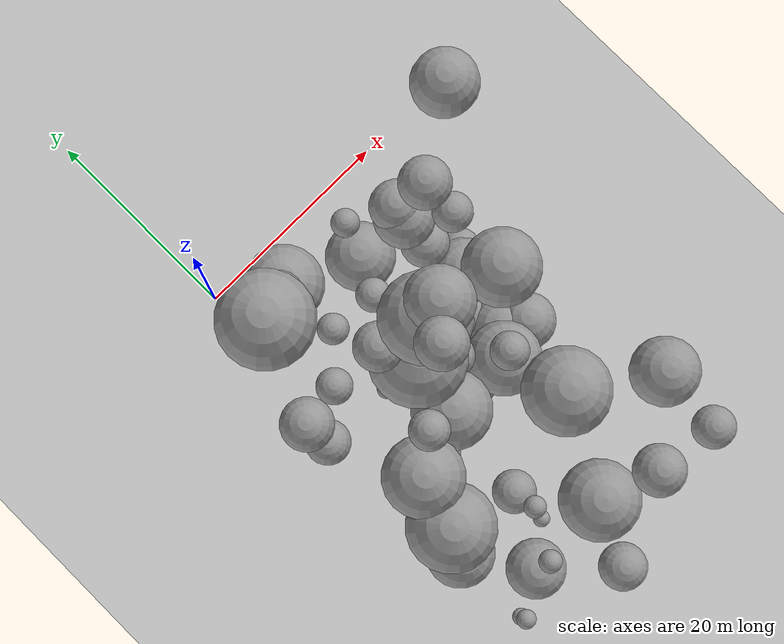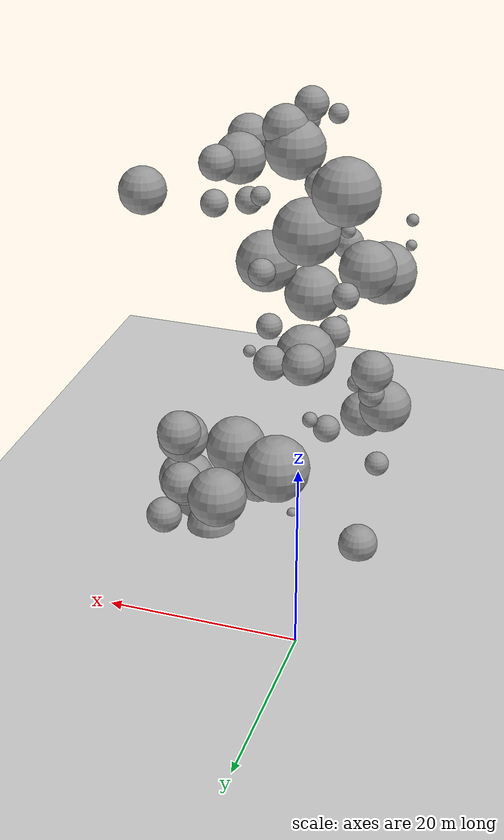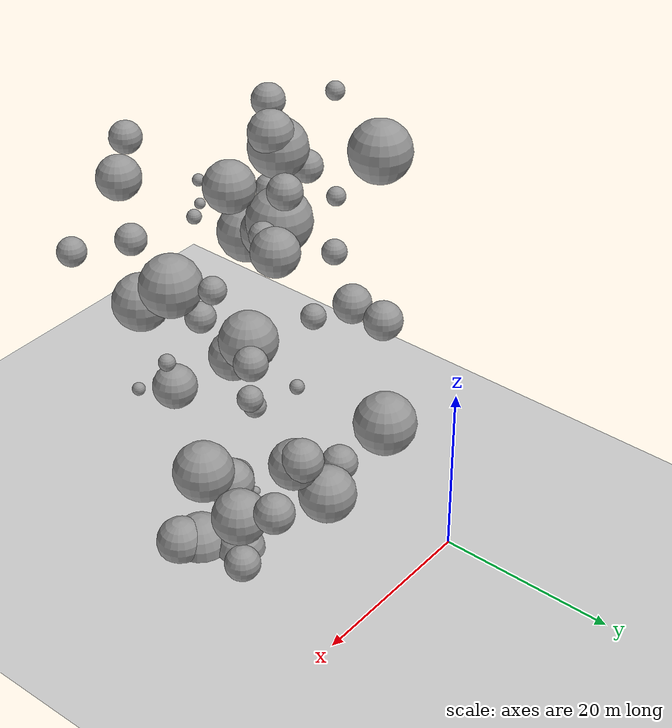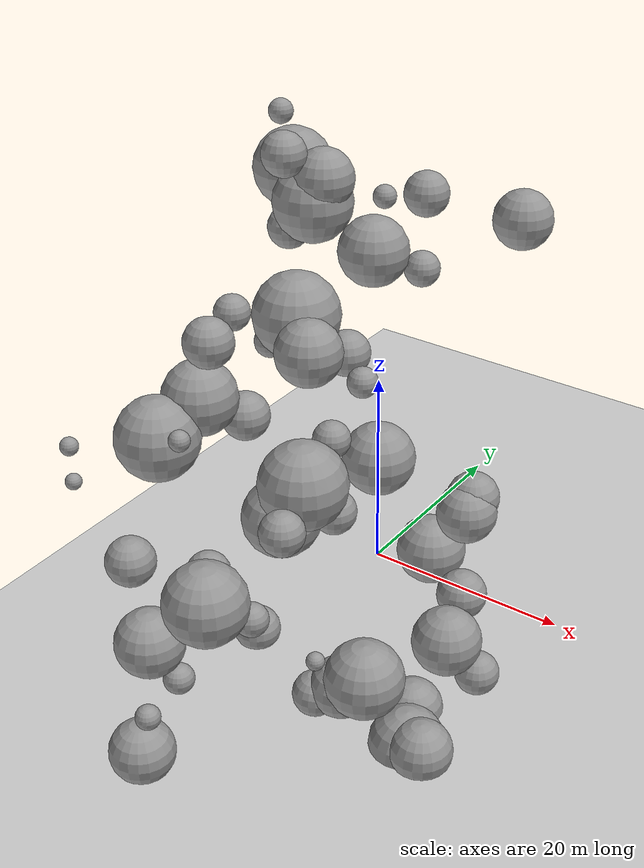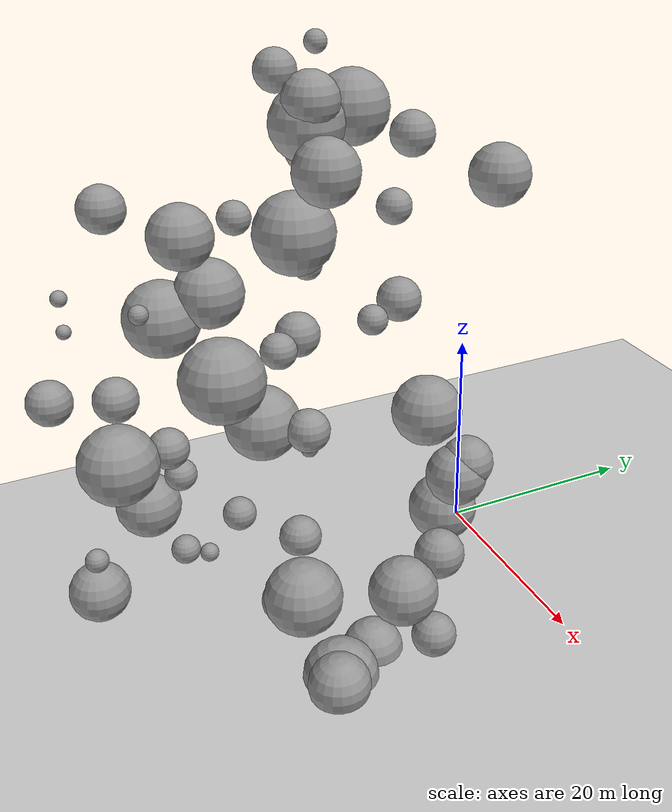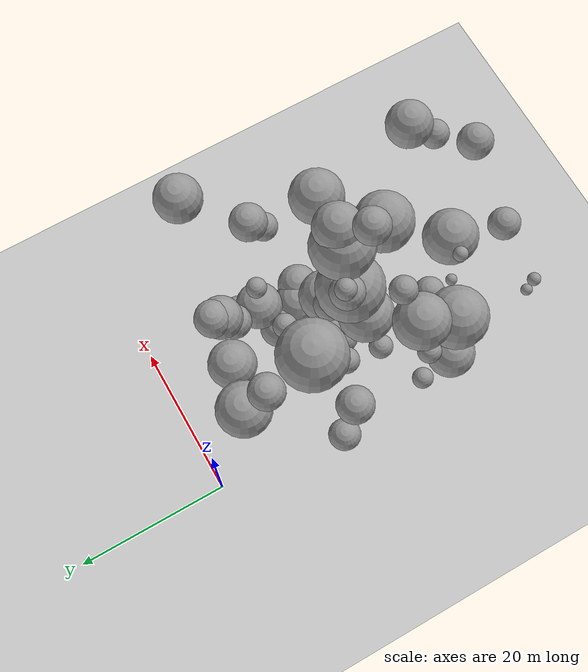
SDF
<sdf version="1.7">
 <world name="default">
  <model name="ground_plane">
   <static>1</static>
   <link name="link">
    <collision name="collision">
     <geometry><plane><normal>0 0 1</normal><size>100 100</size></plane></geometry>
     <surface>
      <contact><collide_bitmask>65535</collide_bitmask></contact>
      <friction><ode><mu>100</mu><mu2>50</mu2></ode></friction>
     </surface>
    </collision>
    <visual name="visual">
     <cast_shadows>0</cast_shadows>
     <geometry><plane><normal>0 0 1</normal><size>100 100</size></plane></geometry>
     <material>
      <script><uri>file://media/materials/scripts/gazebo.material</uri><name>Gazebo/Grey</name></script>
     </material>
    </visual>
   </link>
  </model>
  <model name="sphere_8">
   <static>1</static>
   <pose>-1 -32 10 0 0 0</pose>
   <link name="link">
    <inertial>
     <mass>11092.84915670774</mass>
     <inertia>
      <ixx>39422.070545254806</ixx>
      <iyy>39422.070545254806</iyy>
      <izz>39422.070545254806</izz>
      <ixy>0</ixy>
      <ixz>0</ixz>
      <iyz>0</iyz>
     </inertia>
    </inertial>
    <collision name="collision">
     <geometry><sphere><radius>2.9806993030238513</radius></sphere></geometry>
    </collision>
    <visual name="visual">
     <geometry><sphere><radius>2.9806993030238513</radius></sphere></geometry>
     <material>
      <script><uri>file://media/materials/scripts/gazebo.material</uri><name>Gazebo/Grey</name></script>
     </material>
    </visual>
   </link>
  </model>
  <model name="sphere_13">
   <static>1</static>
   <pose>18 -8 43 0 0 0</pose>
   <link name="link">
    <inertial>
     <mass>5152.770641691379</mass>
     <inertia>
      <ixx>10983.369762803279</ixx>
      <iyy>10983.369762803279</iyy>
      <izz>10983.369762803279</izz>
      <ixy>0</ixy>
      <ixz>0</ixz>
      <iyz>0</iyz>
     </inertia>
    </inertial>
    <collision name="collision">
     <geometry><sphere><radius>2.3084336735061317</radius></sphere></geometry>
    </collision>
    <visual name="visual">
     <geometry><sphere><radius>2.3084336735061317</radius></sphere></geometry>
     <material>
      <script><uri>file://media/materials/scripts/gazebo.material</uri><name>Gazebo/Grey</name></script>
     </material>
    </visual>
   </link>
  </model>
  <model name="sphere_14">
   <static>1</static>
   <pose>0 -16 31 0 0 0</pose>
   <link name="link">
    <inertial>
     <mass>1051.1044841971827</mass>
     <inertia>
      <ixx>776.3854716185958</ixx>
      <iyy>776.3854716185958</iyy>
      <izz>776.3854716185958</izz>
      <ixy>0</ixy>
      <ixz>0</ixz>
      <iyz>0</iyz>
     </inertia>
    </inertial>
    <collision name="collision">
     <geometry><sphere><radius>1.3588945593796224</radius></sphere></geometry>
    </collision>
    <visual name="visual">
     <geometry><sphere><radius>1.3588945593796224</radius></sphere></geometry>
     <material>
      <script><uri>file://media/materials/scripts/gazebo.material</uri><name>Gazebo/Grey</name></script>
     </material>
    </visual>
   </link>
  </model>
  <model name="sphere_15">
   <static>1</static>
   <pose>7 -22 0 0 0 0</pose>
   <link name="link">
    <inertial>
     <mass>87.60431492458373</mass>
     <inertia>
      <ixx>12.34648731932379</ixx>
      <iyy>12.34648731932379</iyy>
      <izz>12.34648731932379</izz>
      <ixy>0</ixy>
      <ixz>0</ixz>
      <iyz>0</iyz>
     </inertia>
    </inertial>
    <collision name="collision">
     <geometry><sphere><radius>0.5935795945507261</radius></sphere></geometry>
    </collision>
    <visual name="visual">
     <geometry><sphere><radius>0.5935795945507261</radius></sphere></geometry>
     <material>
      <script><uri>file://media/materials/scripts/gazebo.material</uri><name>Gazebo/Grey</name></script>
     </material>
    </visual>
   </link>
  </model>
  <model name="sphere_19">
   <static>1</static>
   <pose>6 -23 20 0 0 0</pose>
   <link name="link">
    <inertial>
     <mass>14718.632631495893</mass>
     <inertia>
      <ixx>63160.66510189505</ixx>
      <iyy>63160.66510189505</iyy>
      <izz>63160.66510189505</izz>
      <ixy>0</ixy>
      <ixz>0</ixz>
      <iyz>0</iyz>
     </inertia>
    </inertial>
    <collision name="collision">
     <geometry><sphere><radius>3.2753643580509237</radius></sphere></geometry>
    </collision>
    <visual name="visual">
     <geometry><sphere><radius>3.2753643580509237</radius></sphere></geometry>
     <material>
      <script><uri>file://media/materials/scripts/gazebo.material</uri><name>Gazebo/Grey</name></script>
     </material>
    </visual>
   </link>
  </model>
  <model name="sphere_24">
   <static>1</static>
   <pose>4 -38 9 0 0 0</pose>
   <link name="link">
    <inertial>
     <mass>461.1085611241519</mass>
     <inertia>
      <ixx>196.64046585716275</ixx>
      <iyy>196.64046585716275</iyy>
      <izz>196.64046585716275</izz>
      <ixy>0</ixy>
      <ixz>0</ixz>
      <iyz>0</iyz>
     </inertia>
    </inertial>
    <collision name="collision">
     <geometry><sphere><radius>1.0325351826695544</radius></sphere></geometry>
    </collision>
    <visual name="visual">
     <geometry><sphere><radius>1.0325351826695544</radius></sphere></geometry>
     <material>
      <script><uri>file://media/materials/scripts/gazebo.material</uri><name>Gazebo/Grey</name></script>
     </material>
    </visual>
   </link>
  </model>
  <model name="sphere_30">
   <static>1</static>
   <pose>11 -22 4 0 0 0</pose>
   <link name="link">
    <inertial>
     <mass>8712.248352823823</mass>
     <inertia>
      <ixx>26356.313424238208</ixx>
      <iyy>26356.313424238208</iyy>
      <izz>26356.313424238208</izz>
      <ixy>0</ixy>
      <ixz>0</ixz>
      <iyz>0</iyz>
     </inertia>
    </inertial>
    <collision name="collision">
     <geometry><sphere><radius>2.7500919357448264</radius></sphere></geometry>
    </collision>
    <visual name="visual">
     <geometry><sphere><radius>2.7500919357448264</radius></sphere></geometry>
     <material>
      <script><uri>file://media/materials/scripts/gazebo.material</uri><name>Gazebo/Grey</name></script>
     </material>
    </visual>
   </link>
  </model>
  <model name="sphere_37">
   <static>1</static>
   <pose>15 -31 41 0 0 0</pose>
   <link name="link">
    <inertial>
     <mass>5170.2749976728355</mass>
     <inertia>
      <ixx>11045.62573122916</ixx>
      <iyy>11045.62573122916</iyy>
      <izz>11045.62573122916</izz>
      <ixy>0</ixy>
      <ixz>0</ixz>
      <iyz>0</iyz>
     </inertia>
    </inertial>
    <collision name="collision">
     <geometry><sphere><radius>2.311044694371895</radius></sphere></geometry>
    </collision>
    <visual name="visual">
     <geometry><sphere><radius>2.311044694371895</radius></sphere></geometry>
     <material>
      <script><uri>file://media/materials/scripts/gazebo.material</uri><name>Gazebo/Grey</name></script>
     </material>
    </visual>
   </link>
  </model>
  <model name="sphere_46">
   <static>1</static>
   <pose>0 -25 30 0 0 0</pose>
   <link name="link">
    <inertial>
     <mass>11979.470812842934</mass>
     <inertia>
      <ixx>44812.273166999315</ixx>
      <iyy>44812.273166999315</iyy>
      <izz>44812.273166999315</izz>
      <ixy>0</ixy>
      <ixz>0</ixz>
      <iyz>0</iyz>
     </inertia>
    </inertial>
    <collision name="collision">
     <geometry><sphere><radius>3.058085861011049</radius></sphere></geometry>
    </collision>
    <visual name="visual">
     <geometry><sphere><radius>3.058085861011049</radius></sphere></geometry>
     <material>
      <script><uri>file://media/materials/scripts/gazebo.material</uri><name>Gazebo/Grey</name></script>
     </material>
    </visual>
   </link>
  </model>
  <model name="sphere_53">
   <static>1</static>
   <pose>13 -14 40 0 0 0</pose>
   <link name="link">
    <inertial>
     <mass>1095.448427660931</mass>
     <inertia>
      <ixx>831.7397911875751</ixx>
      <iyy>831.7397911875751</iyy>
      <izz>831.7397911875751</izz>
      <ixy>0</ixy>
      <ixz>0</ixz>
      <iyz>0</iyz>
     </inertia>
    </inertial>
    <collision name="collision">
     <geometry><sphere><radius>1.377741612175185</radius></sphere></geometry>
    </collision>
    <visual name="visual">
     <geometry><sphere><radius>1.377741612175185</radius></sphere></geometry>
     <material>
      <script><uri>file://media/materials/scripts/gazebo.material</uri><name>Gazebo/Grey</name></script>
     </material>
    </visual>
   </link>
  </model>
  <model name="sphere_56">
   <static>1</static>
   <pose>4 -25 10 0 0 0</pose>
   <link name="link">
    <inertial>
     <mass>1458.1175941947506</mass>
     <inertia>
      <ixx>1339.6412209713428</ixx>
      <iyy>1339.6412209713428</iyy>
      <izz>1339.6412209713428</izz>
      <ixy>0</ixy>
      <ixz>0</ixz>
      <iyz>0</iyz>
     </inertia>
    </inertial>
    <collision name="collision">
     <geometry><sphere><radius>1.515542013745351</radius></sphere></geometry>
    </collision>
    <visual name="visual">
     <geometry><sphere><radius>1.515542013745351</radius></sphere></geometry>
     <material>
      <script><uri>file://media/materials/scripts/gazebo.material</uri><name>Gazebo/Grey</name></script>
     </material>
    </visual>
   </link>
  </model>
  <model name="sphere_79">
   <static>1</static>
   <pose>2 -8 27 0 0 0</pose>
   <link name="link">
    <inertial>
     <mass>3639.006487517002</mass>
     <inertia>
      <ixx>6151.376391410737</ixx>
      <iyy>6151.376391410737</iyy>
      <izz>6151.376391410737</izz>
      <ixy>0</ixy>
      <ixz>0</ixz>
      <iyz>0</iyz>
     </inertia>
    </inertial>
    <collision name="collision">
     <geometry><sphere><radius>2.0557236875889764</radius></sphere></geometry>
    </collision>
    <visual name="visual">
     <geometry><sphere><radius>2.0557236875889764</radius></sphere></geometry>
     <material>
      <script><uri>file://media/materials/scripts/gazebo.material</uri><name>Gazebo/Grey</name></script>
     </material>
    </visual>
   </link>
  </model>
  <model name="sphere_83">
   <static>1</static>
   <pose>9 -20 20 0 0 0</pose>
   <link name="link">
    <inertial>
     <mass>2801.904512809208</mass>
     <inertia>
      <ixx>3978.8399479000864</ixx>
      <iyy>3978.8399479000864</iyy>
      <izz>3978.8399479000864</izz>
      <ixy>0</ixy>
      <ixz>0</ixz>
      <iyz>0</iyz>
     </inertia>
    </inertial>
    <collision name="collision">
     <geometry><sphere><radius>1.8841764607756186</radius></sphere></geometry>
    </collision>
    <visual name="visual">
     <geometry><sphere><radius>1.8841764607756186</radius></sphere></geometry>
     <material>
      <script><uri>file://media/materials/scripts/gazebo.material</uri><name>Gazebo/Grey</name></script>
     </material>
    </visual>
   </link>
  </model>
  <model name="sphere_89">
   <static>1</static>
   <pose>12 -19 43 0 0 0</pose>
   <link name="link">
    <inertial>
     <mass>7406.024212002303</mass>
     <inertia>
      <ixx>20105.24937963246</ixx>
      <iyy>20105.24937963246</iyy>
      <izz>20105.24937963246</izz>
      <ixy>0</ixy>
      <ixz>0</ixz>
      <iyz>0</iyz>
     </inertia>
    </inertial>
    <collision name="collision">
     <geometry><sphere><radius>2.605146631591852</radius></sphere></geometry>
    </collision>
    <visual name="visual">
     <geometry><sphere><radius>2.605146631591852</radius></sphere></geometry>
     <material>
      <script><uri>file://media/materials/scripts/gazebo.material</uri><name>Gazebo/Grey</name></script>
     </material>
    </visual>
   </link>
  </model>
  <model name="sphere_91">
   <static>1</static>
   <pose>15 -17 0 0 0 0</pose>
   <link name="link">
    <inertial>
     <mass>8060.1463374687355</mass>
     <inertia>
      <ixx>23151.144363670068</ixx>
      <iyy>23151.144363670068</iyy>
      <izz>23151.144363670068</izz>
      <ixy>0</ixy>
      <ixz>0</ixz>
      <iyz>0</iyz>
     </inertia>
    </inertial>
    <collision name="collision">
     <geometry><sphere><radius>2.6796913384952994</radius></sphere></geometry>
    </collision>
    <visual name="visual">
     <geometry><sphere><radius>2.6796913384952994</radius></sphere></geometry>
     <material>
      <script><uri>file://media/materials/scripts/gazebo.material</uri><name>Gazebo/Grey</name></script>
     </material>
    </visual>
   </link>
  </model>
  <model name="sphere_105">
   <static>1</static>
   <pose>15 -31 15 0 0 0</pose>
   <link name="link">
    <inertial>
     <mass>159.54244452684497</mass>
     <inertia>
      <ixx>33.532143953439316</ixx>
      <iyy>33.532143953439316</iyy>
      <izz>33.532143953439316</izz>
      <ixy>0</ixy>
      <ixz>0</ixz>
      <iyz>0</iyz>
     </inertia>
    </inertial>
    <collision name="collision">
     <geometry><sphere><radius>0.7248740361047408</radius></sphere></geometry>
    </collision>
    <visual name="visual">
     <geometry><sphere><radius>0.7248740361047408</radius></sphere></geometry>
     <material>
      <script><uri>file://media/materials/scripts/gazebo.material</uri><name>Gazebo/Grey</name></script>
     </material>
    </visual>
   </link>
  </model>
  <model name="sphere_126">
   <static>1</static>
   <pose>7 -13 28 0 0 0</pose>
   <link name="link">
    <inertial>
     <mass>962.767738569911</mass>
     <inertia>
      <ixx>670.713117588333</ixx>
      <iyy>670.713117588333</iyy>
      <izz>670.713117588333</izz>
      <ixy>0</ixy>
      <ixz>0</ixz>
      <iyz>0</iyz>
     </inertia>
    </inertial>
    <collision name="collision">
     <geometry><sphere><radius>1.3197073635116605</radius></sphere></geometry>
    </collision>
    <visual name="visual">
     <geometry><sphere><radius>1.3197073635116605</radius></sphere></geometry>
     <material>
      <script><uri>file://media/materials/scripts/gazebo.material</uri><name>Gazebo/Grey</name></script>
     </material>
    </visual>
   </link>
  </model>
  <model name="sphere_138">
   <static>1</static>
   <pose>12 -28 28 0 0 0</pose>
   <link name="link">
    <inertial>
     <mass>16385.35016540084</mass>
     <inertia>
      <ixx>75525.53263023379</ixx>
      <iyy>75525.53263023379</iyy>
      <izz>75525.53263023379</izz>
      <ixy>0</ixy>
      <ixz>0</ixz>
      <iyz>0</iyz>
     </inertia>
    </inertial>
    <collision name="collision">
     <geometry><sphere><radius>3.394603379297657</radius></sphere></geometry>
    </collision>
    <visual name="visual">
     <geometry><sphere><radius>3.394603379297657</radius></sphere></geometry>
     <material>
      <script><uri>file://media/materials/scripts/gazebo.material</uri><name>Gazebo/Grey</name></script>
     </material>
    </visual>
   </link>
  </model>
  <model name="sphere_150">
   <static>1</static>
   <pose>2 -23 37 0 0 0</pose>
   <link name="link">
    <inertial>
     <mass>1225.7386060550036</mass>
     <inertia>
      <ixx>1003.0687335690614</ixx>
      <iyy>1003.0687335690614</iyy>
      <izz>1003.0687335690614</izz>
      <ixy>0</ixy>
      <ixz>0</ixz>
      <iyz>0</iyz>
     </inertia>
    </inertial>
    <collision name="collision">
     <geometry><sphere><radius>1.4303305626309089</radius></sphere></geometry>
    </collision>
    <visual name="visual">
     <geometry><sphere><radius>1.4303305626309089</radius></sphere></geometry>
     <material>
      <script><uri>file://media/materials/scripts/gazebo.material</uri><name>Gazebo/Grey</name></script>
     </material>
    </visual>
   </link>
  </model>
  <model name="sphere_159">
   <static>1</static>
   <pose>17 -21 0 0 0 0</pose>
   <link name="link">
    <inertial>
     <mass>15332.646553468916</mass>
     <inertia>
      <ixx>67612.88373142114</ixx>
      <iyy>67612.88373142114</iyy>
      <izz>67612.88373142114</izz>
      <ixy>0</ixy>
      <ixz>0</ixz>
      <iyz>0</iyz>
     </inertia>
    </inertial>
    <collision name="collision">
     <geometry><sphere><radius>3.3202911797942485</radius></sphere></geometry>
    </collision>
    <visual name="visual">
     <geometry><sphere><radius>3.3202911797942485</radius></sphere></geometry>
     <material>
      <script><uri>file://media/materials/scripts/gazebo.material</uri><name>Gazebo/Grey</name></script>
     </material>
    </visual>
   </link>
  </model>
  <model name="sphere_177">
   <static>1</static>
   <pose>-2 -37 31 0 0 0</pose>
   <link name="link">
    <inertial>
     <mass>144.8590822757978</mass>
     <inertia>
      <ixx>28.548095064636495</ixx>
      <iyy>28.548095064636495</iyy>
      <izz>28.548095064636495</izz>
      <ixy>0</ixy>
      <ixz>0</ixz>
      <iyz>0</iyz>
     </inertia>
    </inertial>
    <collision name="collision">
     <geometry><sphere><radius>0.7019169124715949</radius></sphere></geometry>
    </collision>
    <visual name="visual">
     <geometry><sphere><radius>0.7019169124715949</radius></sphere></geometry>
     <material>
      <script><uri>file://media/materials/scripts/gazebo.material</uri><name>Gazebo/Grey</name></script>
     </material>
    </visual>
   </link>
  </model>
  <model name="sphere_178">
   <static>1</static>
   <pose>16 -11 9 0 0 0</pose>
   <link name="link">
    <inertial>
     <mass>4454.529701415801</mass>
     <inertia>
      <ixx>8616.62812540811</ixx>
      <iyy>8616.62812540811</iyy>
      <izz>8616.62812540811</izz>
      <ixy>0</ixy>
      <ixz>0</ixz>
      <iyz>0</iyz>
     </inertia>
    </inertial>
    <collision name="collision">
     <geometry><sphere><radius>2.1990633972512654</radius></sphere></geometry>
    </collision>
    <visual name="visual">
     <geometry><sphere><radius>2.1990633972512654</radius></sphere></geometry>
     <material>
      <script><uri>file://media/materials/scripts/gazebo.material</uri><name>Gazebo/Grey</name></script>
     </material>
    </visual>
   </link>
  </model>
  <model name="sphere_183">
   <static>1</static>
   <pose>4 -32 31 0 0 0</pose>
   <link name="link">
    <inertial>
     <mass>230.86982450959752</mass>
     <inertia>
      <ixx>62.07921356025682</ixx>
      <iyy>62.07921356025682</iyy>
      <izz>62.07921356025682</izz>
      <ixy>0</ixy>
      <ixz>0</ixz>
      <iyz>0</iyz>
     </inertia>
    </inertial>
    <collision name="collision">
     <geometry><sphere><radius>0.8198974225850496</radius></sphere></geometry>
    </collision>
    <visual name="visual">
     <geometry><sphere><radius>0.8198974225850496</radius></sphere></geometry>
     <material>
      <script><uri>file://media/materials/scripts/gazebo.material</uri><name>Gazebo/Grey</name></script>
     </material>
    </visual>
   </link>
  </model>
  <model name="sphere_186">
   <static>1</static>
   <pose>4 -18 15 0 0 0</pose>
   <link name="link">
    <inertial>
     <mass>234.94599315077252</mass>
     <inertia>
      <ixx>63.91669687421046</ixx>
      <iyy>63.91669687421046</iyy>
      <izz>63.91669687421046</izz>
      <ixy>0</ixy>
      <ixz>0</ixz>
      <iyz>0</iyz>
     </inertia>
    </inertial>
    <collision name="collision">
     <geometry><sphere><radius>0.824694587921767</radius></sphere></geometry>
    </collision>
    <visual name="visual">
     <geometry><sphere><radius>0.824694587921767</radius></sphere></geometry>
     <material>
      <script><uri>file://media/materials/scripts/gazebo.material</uri><name>Gazebo/Grey</name></script>
     </material>
    </visual>
   </link>
  </model>
  <model name="sphere_219">
   <static>1</static>
   <pose>5 -31 19 0 0 0</pose>
   <link name="link">
    <inertial>
     <mass>2315.136373981106</mass>
     <inertia>
      <ixx>2894.8665570274193</ixx>
      <iyy>2894.8665570274193</iyy>
      <izz>2894.8665570274193</izz>
      <ixy>0</ixy>
      <ixz>0</ixz>
      <iyz>0</iyz>
     </inertia>
    </inertial>
    <collision name="collision">
     <geometry><sphere><radius>1.768055891310055</radius></sphere></geometry>
    </collision>
    <visual name="visual">
     <geometry><sphere><radius>1.768055891310055</radius></sphere></geometry>
     <material>
      <script><uri>file://media/materials/scripts/gazebo.material</uri><name>Gazebo/Grey</name></script>
     </material>
    </visual>
   </link>
  </model>
  <model name="sphere_222">
   <static>1</static>
   <pose>0 -29 13 0 0 0</pose>
   <link name="link">
    <inertial>
     <mass>1358.651445536938</mass>
     <inertia>
      <ixx>1190.8242693389684</ixx>
      <iyy>1190.8242693389684</iyy>
      <izz>1190.8242693389684</izz>
      <ixy>0</ixy>
      <ixz>0</ixz>
      <iyz>0</iyz>
     </inertia>
    </inertial>
    <collision name="collision">
     <geometry><sphere><radius>1.4802661748012178</radius></sphere></geometry>
    </collision>
    <visual name="visual">
     <geometry><sphere><radius>1.4802661748012178</radius></sphere></geometry>
     <material>
      <script><uri>file://media/materials/scripts/gazebo.material</uri><name>Gazebo/Grey</name></script>
     </material>
    </visual>
   </link>
  </model>
  <model name="sphere_225">
   <static>1</static>
   <pose>6 -18 45 0 0 0</pose>
   <link name="link">
    <inertial>
     <mass>11643.873711997792</mass>
     <inertia>
      <ixx>42739.561552886975</ixx>
      <iyy>42739.561552886975</iyy>
      <izz>42739.561552886975</izz>
      <ixy>0</ixy>
      <ixz>0</ixz>
      <iyz>0</iyz>
     </inertia>
    </inertial>
    <collision name="collision">
     <geometry><sphere><radius>3.0292582015755025</radius></sphere></geometry>
    </collision>
    <visual name="visual">
     <geometry><sphere><radius>3.0292582015755025</radius></sphere></geometry>
     <material>
      <script><uri>file://media/materials/scripts/gazebo.material</uri><name>Gazebo/Grey</name></script>
     </material>
    </visual>
   </link>
  </model>
  <model name="sphere_231">
   <static>1</static>
   <pose>5 -34 19 0 0 0</pose>
   <link name="link">
    <inertial>
     <mass>128.3339031613807</mass>
     <inertia>
      <ixx>23.32938321615194</ixx>
      <iyy>23.32938321615194</iyy>
      <izz>23.32938321615194</izz>
      <ixy>0</ixy>
      <ixz>0</ixz>
      <iyz>0</iyz>
     </inertia>
    </inertial>
    <collision name="collision">
     <geometry><sphere><radius>0.6741412954865091</radius></sphere></geometry>
    </collision>
    <visual name="visual">
     <geometry><sphere><radius>0.6741412954865091</radius></sphere></geometry>
     <material>
      <script><uri>file://media/materials/scripts/gazebo.material</uri><name>Gazebo/Grey</name></script>
     </material>
    </visual>
   </link>
  </model>
  <model name="sphere_236">
   <static>1</static>
   <pose>1 -15 50 0 0 0</pose>
   <link name="link">
    <inertial>
     <mass>360.81331833338777</mass>
     <inertia>
      <ixx>130.658755765652</ixx>
      <iyy>130.658755765652</iyy>
      <izz>130.658755765652</izz>
      <ixy>0</ixy>
      <ixz>0</ixz>
      <iyz>0</iyz>
     </inertia>
    </inertial>
    <collision name="collision">
     <geometry><sphere><radius>0.9514763185052727</radius></sphere></geometry>
    </collision>
    <visual name="visual">
     <geometry><sphere><radius>0.9514763185052727</radius></sphere></geometry>
     <material>
      <script><uri>file://media/materials/scripts/gazebo.material</uri><name>Gazebo/Grey</name></script>
     </material>
    </visual>
   </link>
  </model>
  <model name="sphere_261">
   <static>1</static>
   <pose>17 -15 7 0 0 0</pose>
   <link name="link">
    <inertial>
     <mass>11657.80279530405</mass>
     <inertia>
      <ixx>42824.80813594556</ixx>
      <iyy>42824.80813594556</iyy>
      <izz>42824.80813594556</izz>
      <ixy>0</ixy>
      <ixz>0</ixz>
      <iyz>0</iyz>
     </inertia>
    </inertial>
    <collision name="collision">
     <geometry><sphere><radius>3.0304656455576238</radius></sphere></geometry>
    </collision>
    <visual name="visual">
     <geometry><sphere><radius>3.0304656455576238</radius></sphere></geometry>
     <material>
      <script><uri>file://media/materials/scripts/gazebo.material</uri><name>Gazebo/Grey</name></script>
     </material>
    </visual>
   </link>
  </model>
  <model name="sphere_263">
   <static>1</static>
   <pose>7 -10 43 0 0 0</pose>
   <link name="link">
    <inertial>
     <mass>348.58134604098757</mass>
     <inertia>
      <ixx>123.36003656697463</ixx>
      <iyy>123.36003656697463</iyy>
      <izz>123.36003656697463</izz>
      <ixy>0</ixy>
      <ixz>0</ixz>
      <iyz>0</iyz>
     </inertia>
    </inertial>
    <collision name="collision">
     <geometry><sphere><radius>0.9406004404230158</radius></sphere></geometry>
    </collision>
    <visual name="visual">
     <geometry><sphere><radius>0.9406004404230158</radius></sphere></geometry>
     <material>
      <script><uri>file://media/materials/scripts/gazebo.material</uri><name>Gazebo/Grey</name></script>
     </material>
    </visual>
   </link>
  </model>
  <model name="sphere_280">
   <static>1</static>
   <pose>4 -6 16 0 0 0</pose>
   <link name="link">
    <inertial>
     <mass>16098.209943686788</mass>
     <inertia>
      <ixx>73332.56851089341</ixx>
      <iyy>73332.56851089341</iyy>
      <izz>73332.56851089341</izz>
      <ixy>0</ixy>
      <ixz>0</ixz>
      <iyz>0</iyz>
     </inertia>
    </inertial>
    <collision name="collision">
     <geometry><sphere><radius>3.3746571668085323</radius></sphere></geometry>
    </collision>
    <visual name="visual">
     <geometry><sphere><radius>3.3746571668085323</radius></sphere></geometry>
     <material>
      <script><uri>file://media/materials/scripts/gazebo.material</uri><name>Gazebo/Grey</name></script>
     </material>
    </visual>
   </link>
  </model>
  <model name="sphere_289">
   <static>1</static>
   <pose>14 -23 7 0 0 0</pose>
   <link name="link">
    <inertial>
     <mass>16499.838641469996</mass>
     <inertia>
      <ixx>76407.10535250547</ixx>
      <iyy>76407.10535250547</iyy>
      <izz>76407.10535250547</izz>
      <ixy>0</ixy>
      <ixz>0</ixz>
      <iyz>0</iyz>
     </inertia>
    </inertial>
    <collision name="collision">
     <geometry><sphere><radius>3.4024913458841377</radius></sphere></geometry>
    </collision>
    <visual name="visual">
     <geometry><sphere><radius>3.4024913458841377</radius></sphere></geometry>
     <material>
      <script><uri>file://media/materials/scripts/gazebo.material</uri><name>Gazebo/Grey</name></script>
     </material>
    </visual>
   </link>
  </model>
  <model name="sphere_293">
   <static>1</static>
   <pose>19 -13 3 0 0 0</pose>
   <link name="link">
    <inertial>
     <mass>3144.8171377480926</mass>
     <inertia>
      <ixx>4823.103492740928</ixx>
      <iyy>4823.103492740928</iyy>
      <izz>4823.103492740928</izz>
      <ixy>0</ixy>
      <ixz>0</ixz>
      <iyz>0</iyz>
     </inertia>
    </inertial>
    <collision name="collision">
     <geometry><sphere><radius>1.9581032852853983</radius></sphere></geometry>
    </collision>
    <visual name="visual">
     <geometry><sphere><radius>1.9581032852853983</radius></sphere></geometry>
     <material>
      <script><uri>file://media/materials/scripts/gazebo.material</uri><name>Gazebo/Grey</name></script>
     </material>
    </visual>
   </link>
  </model>
  <model name="sphere_299">
   <static>1</static>
   <pose>19 -22 1 0 0 0</pose>
   <link name="link">
    <inertial>
     <mass>8503.788019682857</mass>
     <inertia>
      <ixx>25313.661087004697</ixx>
      <iyy>25313.661087004697</iyy>
      <izz>25313.661087004697</izz>
      <ixy>0</ixy>
      <ixz>0</ixz>
      <iyz>0</iyz>
     </inertia>
    </inertial>
    <collision name="collision">
     <geometry><sphere><radius>2.7279805661134455</radius></sphere></geometry>
    </collision>
    <visual name="visual">
     <geometry><sphere><radius>2.7279805661134455</radius></sphere></geometry>
     <material>
      <script><uri>file://media/materials/scripts/gazebo.material</uri><name>Gazebo/Grey</name></script>
     </material>
    </visual>
   </link>
  </model>
  <model name="sphere_302">
   <static>1</static>
   <pose>3 -38 5 0 0 0</pose>
   <link name="link">
    <inertial>
     <mass>8250.786214779073</mass>
     <inertia>
      <ixx>24070.945096724157</ixx>
      <iyy>24070.945096724157</iyy>
      <izz>24070.945096724157</izz>
      <ixy>0</ixy>
      <ixz>0</ixz>
      <iyz>0</iyz>
     </inertia>
    </inertial>
    <collision name="collision">
     <geometry><sphere><radius>2.7006537583415273</radius></sphere></geometry>
    </collision>
    <visual name="visual">
     <geometry><sphere><radius>2.7006537583415273</radius></sphere></geometry>
     <material>
      <script><uri>file://media/materials/scripts/gazebo.material</uri><name>Gazebo/Grey</name></script>
     </material>
    </visual>
   </link>
  </model>
  <model name="sphere_314">
   <static>1</static>
   <pose>11 -23 29 0 0 0</pose>
   <link name="link">
    <inertial>
     <mass>1350.5901442539596</mass>
     <inertia>
      <ixx>1179.0716905712902</ixx>
      <iyy>1179.0716905712902</iyy>
      <izz>1179.0716905712902</izz>
      <ixy>0</ixy>
      <ixz>0</ixz>
      <iyz>0</iyz>
     </inertia>
    </inertial>
    <collision name="collision">
     <geometry><sphere><radius>1.4773327390440372</radius></sphere></geometry>
    </collision>
    <visual name="visual">
     <geometry><sphere><radius>1.4773327390440372</radius></sphere></geometry>
     <material>
      <script><uri>file://media/materials/scripts/gazebo.material</uri><name>Gazebo/Grey</name></script>
     </material>
    </visual>
   </link>
  </model>
  <model name="sphere_315">
   <static>1</static>
   <pose>-2 -17 1 0 0 0</pose>
   <link name="link">
    <inertial>
     <mass>4155.6264007427135</mass>
     <inertia>
      <ixx>7674.705975291131</ixx>
      <iyy>7674.705975291131</iyy>
      <izz>7674.705975291131</izz>
      <ixy>0</ixy>
      <ixz>0</ixz>
      <iyz>0</iyz>
     </inertia>
    </inertial>
    <collision name="collision">
     <geometry><sphere><radius>2.148733867814343</radius></sphere></geometry>
    </collision>
    <visual name="visual">
     <geometry><sphere><radius>2.148733867814343</radius></sphere></geometry>
     <material>
      <script><uri>file://media/materials/scripts/gazebo.material</uri><name>Gazebo/Grey</name></script>
     </material>
    </visual>
   </link>
  </model>
  <model name="sphere_316">
   <static>1</static>
   <pose>5 -20 49 0 0 0</pose>
   <link name="link">
    <inertial>
     <mass>1995.9056492138454</mass>
     <inertia>
      <ixx>2260.6548681670515</ixx>
      <iyy>2260.6548681670515</iyy>
      <izz>2260.6548681670515</izz>
      <ixy>0</ixy>
      <ixz>0</ixz>
      <iyz>0</iyz>
     </inertia>
    </inertial>
    <collision name="collision">
     <geometry><sphere><radius>1.6827404430200865</radius></sphere></geometry>
    </collision>
    <visual name="visual">
     <geometry><sphere><radius>1.6827404430200865</radius></sphere></geometry>
     <material>
      <script><uri>file://media/materials/scripts/gazebo.material</uri><name>Gazebo/Grey</name></script>
     </material>
    </visual>
   </link>
  </model>
  <model name="sphere_324">
   <static>1</static>
   <pose>9 -23 3 0 0 0</pose>
   <link name="link">
    <inertial>
     <mass>3507.4116816369487</mass>
     <inertia>
      <ixx>5785.117158828558</ixx>
      <iyy>5785.117158828558</iyy>
      <izz>5785.117158828558</izz>
      <ixy>0</ixy>
      <ixz>0</ixz>
      <iyz>0</iyz>
     </inertia>
    </inertial>
    <collision name="collision">
     <geometry><sphere><radius>2.0306389471828146</radius></sphere></geometry>
    </collision>
    <visual name="visual">
     <geometry><sphere><radius>2.0306389471828146</radius></sphere></geometry>
     <material>
      <script><uri>file://media/materials/scripts/gazebo.material</uri><name>Gazebo/Grey</name></script>
     </material>
    </visual>
   </link>
  </model>
  <model name="sphere_356">
   <static>1</static>
   <pose>6 -40 26 0 0 0</pose>
   <link name="link">
    <inertial>
     <mass>2515.7975483246096</mass>
     <inertia>
      <ixx>3325.0159611404215</ixx>
      <iyy>3325.0159611404215</iyy>
      <izz>3325.0159611404215</izz>
      <ixy>0</ixy>
      <ixz>0</ixz>
      <iyz>0</iyz>
     </inertia>
    </inertial>
    <collision name="collision">
     <geometry><sphere><radius>1.8177285427753047</radius></sphere></geometry>
    </collision>
    <visual name="visual">
     <geometry><sphere><radius>1.8177285427753047</radius></sphere></geometry>
     <material>
      <script><uri>file://media/materials/scripts/gazebo.material</uri><name>Gazebo/Grey</name></script>
     </material>
    </visual>
   </link>
  </model>
  <model name="sphere_359">
   <static>1</static>
   <pose>-1 -29 4 0 0 0</pose>
   <link name="link">
    <inertial>
     <mass>1107.5994229275202</mass>
     <inertia>
      <ixx>847.1730268133977</ixx>
      <iyy>847.1730268133977</iyy>
      <izz>847.1730268133977</izz>
      <ixy>0</ixy>
      <ixz>0</ixz>
      <iyz>0</iyz>
     </inertia>
    </inertial>
    <collision name="collision">
     <geometry><sphere><radius>1.382816980335031</radius></sphere></geometry>
    </collision>
    <visual name="visual">
     <geometry><sphere><radius>1.382816980335031</radius></sphere></geometry>
     <material>
      <script><uri>file://media/materials/scripts/gazebo.material</uri><name>Gazebo/Grey</name></script>
     </material>
    </visual>
   </link>
  </model>
  <model name="sphere_367">
   <static>1</static>
   <pose>-1 -29 28 0 0 0</pose>
   <link name="link">
    <inertial>
     <mass>16323.130387058058</mass>
     <inertia>
      <ixx>75048.15178888047</ixx>
      <iyy>75048.15178888047</iyy>
      <izz>75048.15178888047</izz>
      <ixy>0</ixy>
      <ixz>0</ixz>
      <iyz>0</iyz>
     </inertia>
    </inertial>
    <collision name="collision">
     <geometry><sphere><radius>3.39030117486496</radius></sphere></geometry>
    </collision>
    <visual name="visual">
     <geometry><sphere><radius>3.39030117486496</radius></sphere></geometry>
     <material>
      <script><uri>file://media/materials/scripts/gazebo.material</uri><name>Gazebo/Grey</name></script>
     </material>
    </visual>
   </link>
  </model>
  <model name="sphere_387">
   <static>1</static>
   <pose>12 -12 45 0 0 0</pose>
   <link name="link">
    <inertial>
     <mass>2191.7134919163473</mass>
     <inertia>
      <ixx>2642.249880696613</ixx>
      <iyy>2642.249880696613</iyy>
      <izz>2642.249880696613</izz>
      <ixy>0</ixy>
      <ixz>0</ixz>
      <iyz>0</iyz>
     </inertia>
    </inertial>
    <collision name="collision">
     <geometry><sphere><radius>1.736061305190447</radius></sphere></geometry>
    </collision>
    <visual name="visual">
     <geometry><sphere><radius>1.736061305190447</radius></sphere></geometry>
     <material>
      <script><uri>file://media/materials/scripts/gazebo.material</uri><name>Gazebo/Grey</name></script>
     </material>
    </visual>
   </link>
  </model>
  <model name="sphere_399">
   <static>1</static>
   <pose>7 -18 47 0 0 0</pose>
   <link name="link">
    <inertial>
     <mass>5038.110877732105</mass>
     <inertia>
      <ixx>10579.060976148998</ixx>
      <iyy>10579.060976148998</iyy>
      <izz>10579.060976148998</izz>
      <ixy>0</ixy>
      <ixz>0</ixz>
      <iyz>0</iyz>
     </inertia>
    </inertial>
    <collision name="collision">
     <geometry><sphere><radius>2.2911826078050983</radius></sphere></geometry>
    </collision>
    <visual name="visual">
     <geometry><sphere><radius>2.2911826078050983</radius></sphere></geometry>
     <material>
      <script><uri>file://media/materials/scripts/gazebo.material</uri><name>Gazebo/Grey</name></script>
     </material>
    </visual>
   </link>
  </model>
  <model name="sphere_404">
   <static>1</static>
   <pose>11 -8 10 0 0 0</pose>
   <link name="link">
    <inertial>
     <mass>12289.656374118238</mass>
     <inertia>
      <ixx>46762.79759282509</ixx>
      <iyy>46762.79759282509</iyy>
      <izz>46762.79759282509</izz>
      <ixy>0</ixy>
      <ixz>0</ixz>
      <iyz>0</iyz>
     </inertia>
    </inertial>
    <collision name="collision">
     <geometry><sphere><radius>3.0842557060492517</radius></sphere></geometry>
    </collision>
    <visual name="visual">
     <geometry><sphere><radius>3.0842557060492517</radius></sphere></geometry>
     <material>
      <script><uri>file://media/materials/scripts/gazebo.material</uri><name>Gazebo/Grey</name></script>
     </material>
    </visual>
   </link>
  </model>
  <model name="sphere_443">
   <static>1</static>
   <pose>-1 -11 44 0 0 0</pose>
   <link name="link">
    <inertial>
     <mass>14451.711956296023</mass>
     <inertia>
      <ixx>61263.209693037985</ixx>
      <iyy>61263.209693037985</iyy>
      <izz>61263.209693037985</izz>
      <ixy>0</ixy>
      <ixz>0</ixz>
      <iyz>0</iyz>
     </inertia>
    </inertial>
    <collision name="collision">
     <geometry><sphere><radius>3.2554440011433314</radius></sphere></geometry>
    </collision>
    <visual name="visual">
     <geometry><sphere><radius>3.2554440011433314</radius></sphere></geometry>
     <material>
      <script><uri>file://media/materials/scripts/gazebo.material</uri><name>Gazebo/Grey</name></script>
     </material>
    </visual>
   </link>
  </model>
  <model name="sphere_453">
   <static>1</static>
   <pose>9 -36 21 0 0 0</pose>
   <link name="link">
    <inertial>
     <mass>14476.177963426198</mass>
     <inertia>
      <ixx>61436.16634172406</ixx>
      <iyy>61436.16634172406</iyy>
      <izz>61436.16634172406</izz>
      <ixy>0</ixy>
      <ixz>0</ixz>
      <iyz>0</iyz>
     </inertia>
    </inertial>
    <collision name="collision">
     <geometry><sphere><radius>3.2572800653206153</radius></sphere></geometry>
    </collision>
    <visual name="visual">
     <geometry><sphere><radius>3.2572800653206153</radius></sphere></geometry>
     <material>
      <script><uri>file://media/materials/scripts/gazebo.material</uri><name>Gazebo/Grey</name></script>
     </material>
    </visual>
   </link>
  </model>
  <model name="sphere_463">
   <static>1</static>
   <pose>-2 -37 28 0 0 0</pose>
   <link name="link">
    <inertial>
     <mass>104.15867099253111</mass>
     <inertia>
      <ixx>16.475045965786915</ixx>
      <iyy>16.475045965786915</iyy>
      <izz>16.475045965786915</izz>
      <ixy>0</ixy>
      <ixz>0</ixz>
      <iyz>0</iyz>
     </inertia>
    </inertial>
    <collision name="collision">
     <geometry><sphere><radius>0.6288334086966936</radius></sphere></geometry>
    </collision>
    <visual name="visual">
     <geometry><sphere><radius>0.6288334086966936</radius></sphere></geometry>
     <material>
      <script><uri>file://media/materials/scripts/gazebo.material</uri><name>Gazebo/Grey</name></script>
     </material>
    </visual>
   </link>
  </model>
  <model name="sphere_472">
   <static>1</static>
   <pose>15 -9 16 0 0 0</pose>
   <link name="link">
    <inertial>
     <mass>7618.076161182165</mass>
     <inertia>
      <ixx>21073.812034193234</ixx>
      <iyy>21073.812034193234</iyy>
      <izz>21073.812034193234</izz>
      <ixy>0</ixy>
      <ixz>0</ixz>
      <iyz>0</iyz>
     </inertia>
    </inertial>
    <collision name="collision">
     <geometry><sphere><radius>2.6297768641882597</radius></sphere></geometry>
    </collision>
    <visual name="visual">
     <geometry><sphere><radius>2.6297768641882597</radius></sphere></geometry>
     <material>
      <script><uri>file://media/materials/scripts/gazebo.material</uri><name>Gazebo/Grey</name></script>
     </material>
    </visual>
   </link>
  </model>
  <model name="sphere_473">
   <static>1</static>
   <pose>5 -19 36 0 0 0</pose>
   <link name="link">
    <inertial>
     <mass>17429.862417039134</mass>
     <inertia>
      <ixx>83719.0291675012</ixx>
      <iyy>83719.0291675012</iyy>
      <izz>83719.0291675012</izz>
      <ixy>0</ixy>
      <ixz>0</ixz>
      <iyz>0</iyz>
     </inertia>
    </inertial>
    <collision name="collision">
     <geometry><sphere><radius>3.465254343580812</radius></sphere></geometry>
    </collision>
    <visual name="visual">
     <geometry><sphere><radius>3.465254343580812</radius></sphere></geometry>
     <material>
      <script><uri>file://media/materials/scripts/gazebo.material</uri><name>Gazebo/Grey</name></script>
     </material>
    </visual>
   </link>
  </model>
  <model name="sphere_482">
   <static>1</static>
   <pose>-3 -16 23 0 0 0</pose>
   <link name="link">
    <inertial>
     <mass>4170.759701886317</mass>
     <inertia>
      <ixx>7721.34337441138</ixx>
      <iyy>7721.34337441138</iyy>
      <izz>7721.34337441138</izz>
      <ixy>0</ixy>
      <ixz>0</ixz>
      <iyz>0</iyz>
     </inertia>
    </inertial>
    <collision name="collision">
     <geometry><sphere><radius>2.1513390141027915</radius></sphere></geometry>
    </collision>
    <visual name="visual">
     <geometry><sphere><radius>2.1513390141027915</radius></sphere></geometry>
     <material>
      <script><uri>file://media/materials/scripts/gazebo.material</uri><name>Gazebo/Grey</name></script>
     </material>
    </visual>
   </link>
  </model>
  <model name="sphere_483">
   <static>1</static>
   <pose>15 -8 17 0 0 0</pose>
   <link name="link">
    <inertial>
     <mass>4986.759935380125</mass>
     <inertia>
      <ixx>10399.960452109193</ixx>
      <iyy>10399.960452109193</iyy>
      <izz>10399.960452109193</izz>
      <ixy>0</ixy>
      <ixz>0</ixz>
      <iyz>0</iyz>
     </inertia>
    </inertial>
    <collision name="collision">
     <geometry><sphere><radius>2.283371717400427</radius></sphere></geometry>
    </collision>
    <visual name="visual">
     <geometry><sphere><radius>2.283371717400427</radius></sphere></geometry>
     <material>
      <script><uri>file://media/materials/scripts/gazebo.material</uri><name>Gazebo/Grey</name></script>
     </material>
    </visual>
   </link>
  </model>
  <model name="sphere_489">
   <static>1</static>
   <pose>3 -17 42 0 0 0</pose>
   <link name="link">
    <inertial>
     <mass>1969.0772303549934</mass>
     <inertia>
      <ixx>2210.2369521749215</ixx>
      <iyy>2210.2369521749215</iyy>
      <izz>2210.2369521749215</izz>
      <ixy>0</ixy>
      <ixz>0</ixz>
      <iyz>0</iyz>
     </inertia>
    </inertial>
    <collision name="collision">
     <geometry><sphere><radius>1.6751667606285037</radius></sphere></geometry>
    </collision>
    <visual name="visual">
     <geometry><sphere><radius>1.6751667606285037</radius></sphere></geometry>
     <material>
      <script><uri>file://media/materials/scripts/gazebo.material</uri><name>Gazebo/Grey</name></script>
     </material>
    </visual>
   </link>
  </model>
  <model name="sphere_497">
   <static>1</static>
   <pose>10 -35 42 0 0 0</pose>
   <link name="link">
    <inertial>
     <mass>2178.010137868466</mass>
     <inertia>
      <ixx>2614.7735308074907</ixx>
      <iyy>2614.7735308074907</iyy>
      <izz>2614.7735308074907</izz>
      <ixy>0</ixy>
      <ixz>0</ixz>
      <iyz>0</iyz>
     </inertia>
    </inertial>
    <collision name="collision">
     <geometry><sphere><radius>1.732435585470597</radius></sphere></geometry>
    </collision>
    <visual name="visual">
     <geometry><sphere><radius>1.732435585470597</radius></sphere></geometry>
     <material>
      <script><uri>file://media/materials/scripts/gazebo.material</uri><name>Gazebo/Grey</name></script>
     </material>
    </visual>
   </link>
  </model>
  <model name="sphere_499">
   <static>1</static>
   <pose>17 -37 31 0 0 0</pose>
   <link name="link">
    <inertial>
     <mass>1677.7236712320075</mass>
     <inertia>
      <ixx>1692.5245309911506</ixx>
      <iyy>1692.5245309911506</iyy>
      <izz>1692.5245309911506</izz>
      <ixy>0</ixy>
      <ixz>0</ixz>
      <iyz>0</iyz>
     </inertia>
    </inertial>
    <collision name="collision">
     <geometry><sphere><radius>1.588097910230939</radius></sphere></geometry>
    </collision>
    <visual name="visual">
     <geometry><sphere><radius>1.588097910230939</radius></sphere></geometry>
     <material>
      <script><uri>file://media/materials/scripts/gazebo.material</uri><name>Gazebo/Grey</name></script>
     </material>
    </visual>
   </link>
  </model>
 </world>
</sdf>
